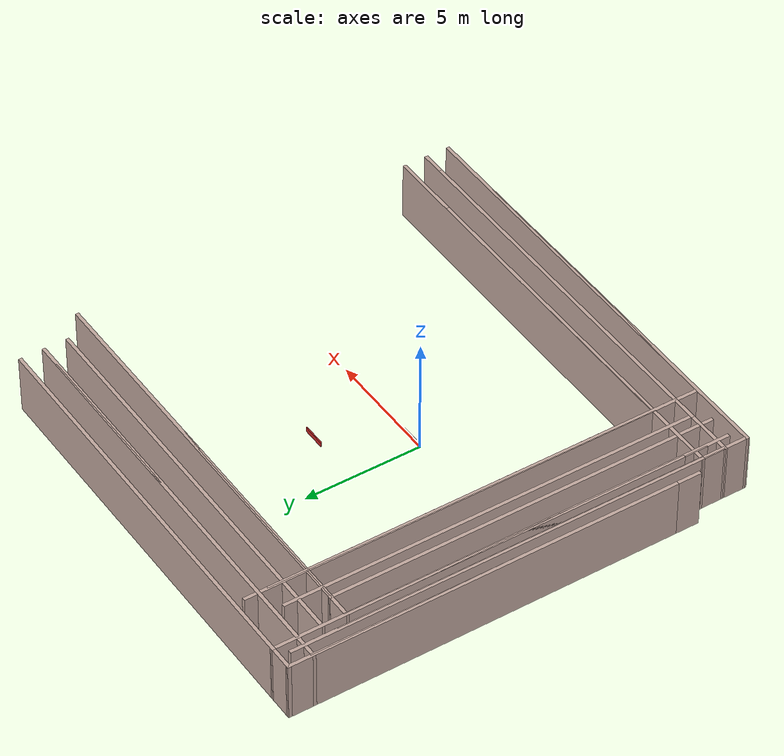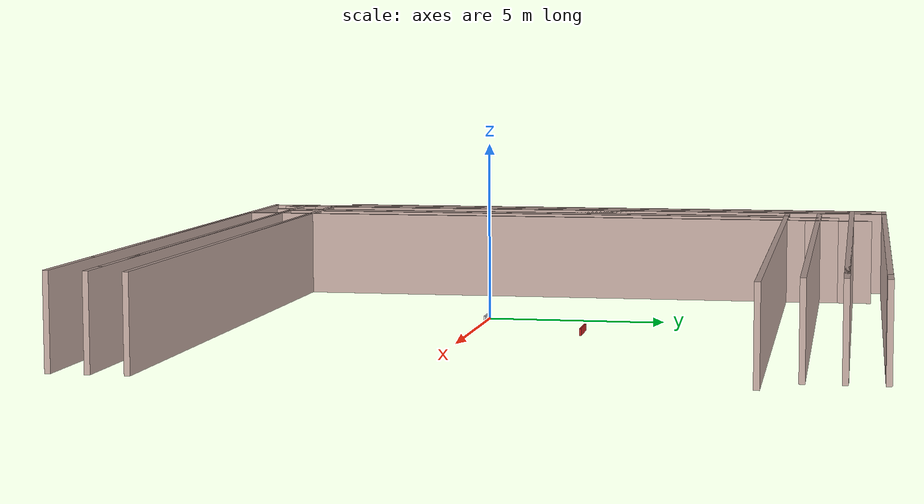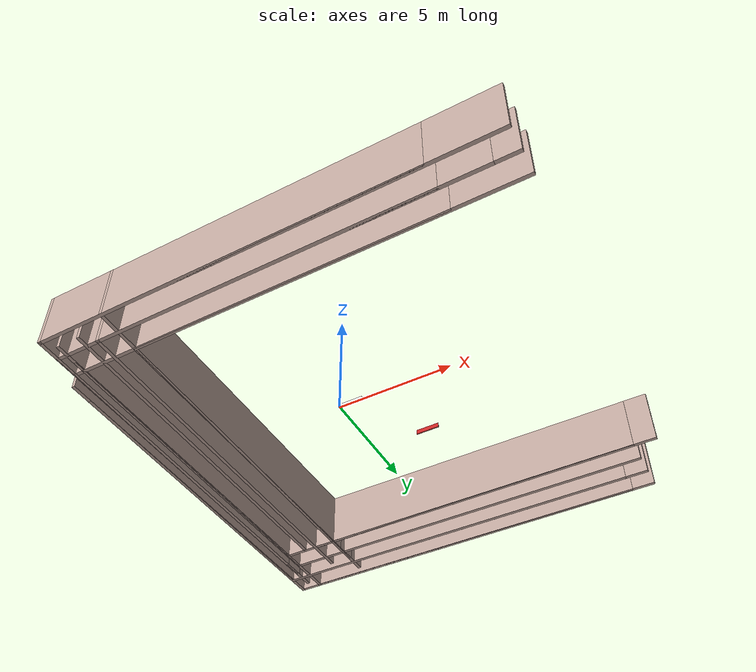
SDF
<?xml version="1.0" ?>
<sdf version="1.7">
    <model name="labyrinth">

			<include><name>0_2h</name><uri>model://wall</uri><pose>0 2 0 0 0 0</pose></include>

			<include><name>0_2v</name><uri>model://wall</uri><pose>0 2 0 0 0 1.5707963267948966</pose></include>

			<include><name>0_3h</name><uri>model://wall</uri><pose>0 3 0 0 0 0</pose></include>

			<include><name>0_1v</name><uri>model://wall</uri><pose>0 1 0 0 0 1.5707963267948966</pose></include>

			<include><name>0_0h</name><uri>model://wall_White</uri><pose>0 0 0 0 0 0</pose></include>

			<include><name>0_0v</name><uri>model://wall</uri><pose>0 0 0 0 0 1.5707963267948966</pose></include>

			<include><name>1_2h</name><uri>model://wall</uri><pose>1 2 0 0 0 0</pose></include>

			<include><name>1_3h</name><uri>model://wall</uri><pose>1 3 0 0 0 0</pose></include>

			<include><name>1_1h</name><uri>model://wall</uri><pose>1 1 0 0 0 0</pose></include>

			<include><name>1_0h</name><uri>model://wall</uri><pose>1 0 0 0 0 0</pose></include>

			<include><name>2_3h</name><uri>model://wall_Red</uri><pose>2 3 0 0 0 0</pose></include>

			<include><name>3_2v</name><uri>model://wall</uri><pose>3 2 0 0 0 1.5707963267948966</pose></include>

			<include><name>2_1v</name><uri>model://wall</uri><pose>2 1 0 0 0 1.5707963267948966</pose></include>

			<include><name>3_1v</name><uri>model://wall</uri><pose>3 1 0 0 0 1.5707963267948966</pose></include>

			<include><name>2_0h</name><uri>model://wall</uri><pose>2 0 0 0 0 0</pose></include>

			<include><name>3_0v</name><uri>model://wall</uri><pose>3 0 0 0 0 1.5707963267948966</pose></include>

	</model>
</sdf>

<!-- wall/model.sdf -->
<sdf version='1.6'>
  <model name='wall'>
    <pose frame=''>-1.26581 1.80502 0 0 -0 0</pose>
    <link name='Wall_0'>
      <collision name='Wall_0_Collision'>
        <geometry>
          <box>
            <size>16.5 0.15 2.5</size>
          </box>
        </geometry>
        <pose frame=''>0 0 1.25 0 -0 0</pose>
      </collision>
      <visual name='Wall_0_Visual'>
        <pose frame=''>0 0 1.25 0 -0 0</pose>
        <geometry>
          <box>
            <size>16.5 0.15 2.5</size>
          </box>
        </geometry>
        <material>
          <script>
            <uri>file://media/materials/scripts/gazebo.material</uri>
            <name>Gazebo/Grey</name>
          </script>
          <ambient>0.760784 0.662745 0.627451 1</ambient>
        </material>
        <meta>
          <layer>0</layer>
        </meta>
      </visual>
      <pose frame=''>-8.71419 -1.8e-05 0 0 0 -1.5708</pose>
    </link>
    <link name='Wall_2'>
      <collision name='Wall_2_Collision'>
        <geometry>
          <box>
            <size>17.5784 0.15 2.5</size>
          </box>
        </geometry>
        <pose frame=''>0 0 1.25 0 -0 0</pose>
      </collision>
      <visual name='Wall_2_Visual'>
        <pose frame=''>0 0 1.25 0 -0 0</pose>
        <geometry>
          <box>
            <size>17.5784 0.15 2.5</size>
          </box>
        </geometry>
        <material>
          <script>
            <uri>file://media/materials/scripts/gazebo.material</uri>
            <name>Gazebo/Grey</name>
          </script>
          <ambient>0.760784 0.662745 0.627451 1</ambient>
        </material>
        <meta>
          <layer>0</layer>
        </meta>
      </visual>
      <pose frame=''>0 8.17066 0 0 0 -0.000496</pose>
    </link>
    <static>1</static>
  </model>
</sdf>

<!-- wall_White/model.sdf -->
<sdf version="1.7">
	<model name="wall_White">
		<link name="link">
			<visual name="visual">

				<pose>0.5 0.025 0.1 0 0 0</pose>

				<geometry>
					<box>
						<size>1 0.05 0.2</size>
					</box>
				</geometry>

				<material>
					<script>
						<uri>file://media/materials/scripts/gazebo.material</uri>
						<name>Gazebo/White</name>
					</script>
				</material>
			</visual>
			<collision name="collision">

				<pose>0.5 0.025 0.1 0 0 0</pose>

				<geometry>
					<box>
						<size>1 0.05 0.2</size>
					</box>
				</geometry>

				<laser_retro>3</laser_retro>
			</collision>
		</link>
	</model>
</sdf>

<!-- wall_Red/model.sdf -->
<sdf version="1.7">
	<model name="wall_Red">
		<link name="link">
			<visual name="visual">

				<pose>0.5 0.025 0.1 0 0 0</pose>

				<geometry>
					<box>
						<size>1 0.05 0.2</size>
					</box>
				</geometry>

				<material>
					<script>
						<uri>file://media/materials/scripts/gazebo.material</uri>
						<name>Gazebo/Red</name>
					</script>
				</material>
			</visual>
			<collision name="collision">

				<pose>0.5 0.025 0.1 0 0 0</pose>

				<geometry>
					<box>
						<size>1 0.05 0.2</size>
					</box>
				</geometry>

				<laser_retro>2</laser_retro>
			</collision>
			<sensor name='sensor_contact_wall' type='contact'>
				<contact><collision>collision</collision></contact>
			</sensor>
		</link>
		<plugin filename="libTouchPlugin.so" name='plugin_touch'>
			<sensor>sensor_contact_wall</sensor>
			<target>tb3</target>
			<namespace>finish_wall</namespace>
			<time>0.00001</time>
			<enabled>true</enabled>
		</plugin>
	</model>
</sdf>
